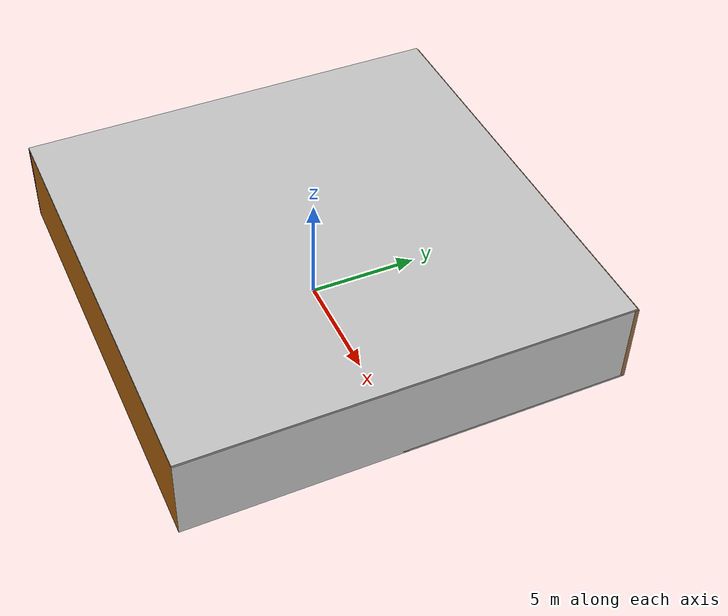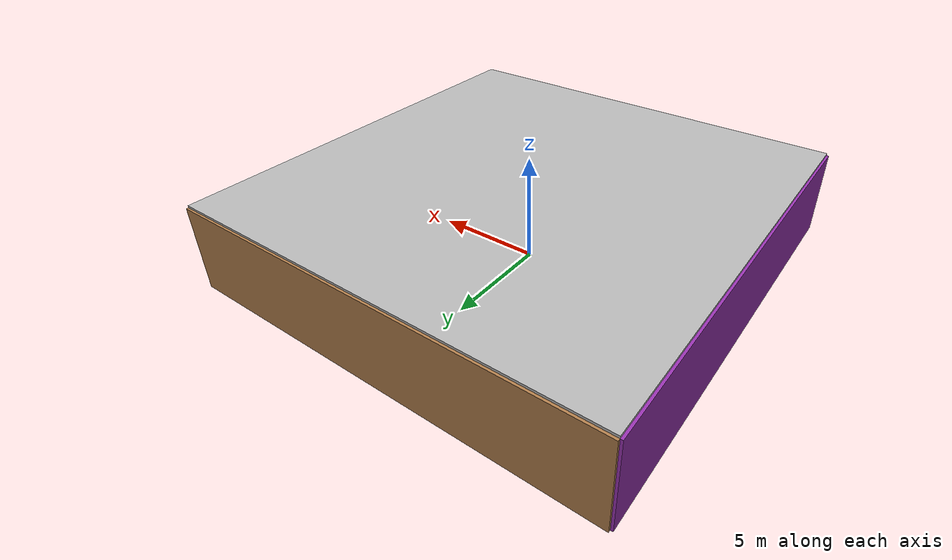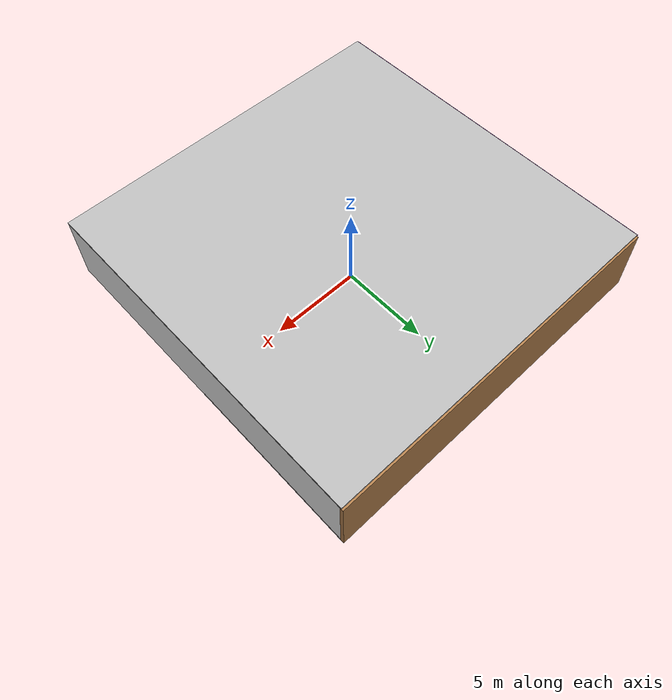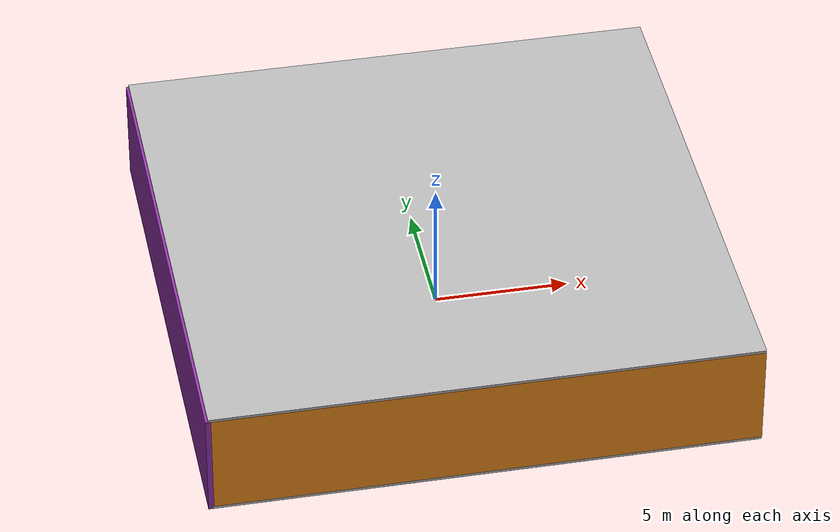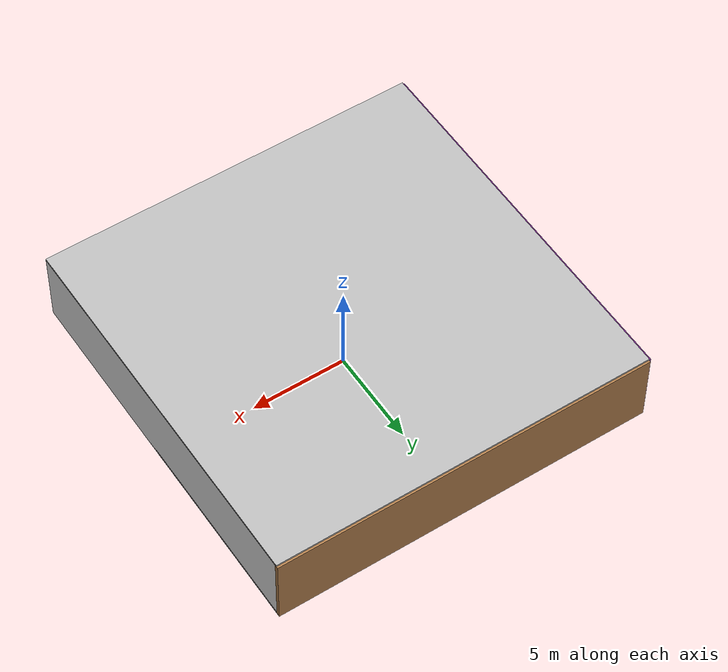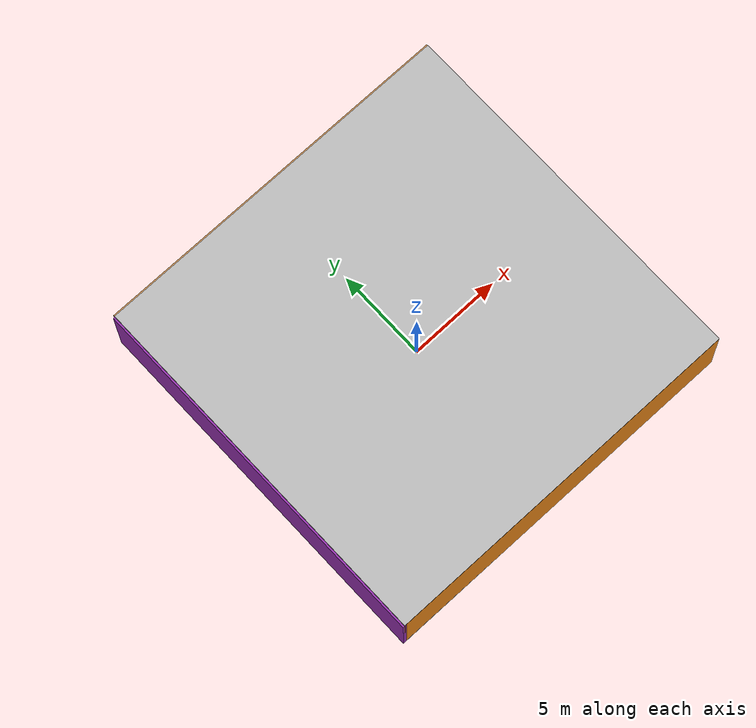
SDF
<sdf version="1.4">
 <world name="default">
  <physics type="ode">
   <max_step_size>0.001</max_step_size>
   <real_time_factor>1</real_time_factor>
   <real_time_update_rate>1000</real_time_update_rate>
   <gravity>0 0 -9.8</gravity>
  </physics>
  <scene><ambient>0.4 0.4 0.4 1</ambient><background>0.7 0.7 0.7 1</background><shadows>1</shadows></scene>
  <model name="Surrounding">
   <static>1</static>
   <link name="Ceiling">
    <collision name="Ceiling_Collision"><geometry><box><size>20 20 0.1</size></box></geometry></collision>
    <visual name="Ceiling_Visual">
     <geometry><box><size>20 20 0.1</size></box></geometry>
     <material>
      <script><uri>file://media/materials/scripts/gazebo.material</uri><name>Gazebo/Pioneer2Body</name></script>
     </material>
    </visual>
    <pose>0 0 4.05 0 0 0</pose>
   </link>
   <link name="Wall_South">
    <collision name="Wall_South_Collision">
     <geometry><box><size>20 0 4</size></box></geometry>
     <pose>0 0 2 0 -0 0</pose>
    </collision>
    <visual name="Wall_South_Visual">
     <pose>0 0 2 0 -0 0</pose>
     <geometry><box><size>20 0 4</size></box></geometry>
     <material>
      <script><uri>file://media/materials/scripts/gazebo.material</uri><name>Gazebo/Orange</name></script>
     </material>
    </visual>
    <velocity_decay><linear>0</linear><angular>0</angular></velocity_decay>
    <pose>0 -10 0 0 -0 0</pose>
   </link>
   <link name="Wall_East">
    <collision name="Wall_21_Collision">
     <geometry><box><size>20 0 4</size></box></geometry>
     <pose>0 0 2 0 -0 0</pose>
    </collision>
    <visual name="Wall_21_Visual">
     <pose>0 0 2 0 -0 0</pose>
     <geometry><box><size>20 0 4</size></box></geometry>
     <material>
      <script><uri>file://media/materials/scripts/gazebo.material</uri><name>Gazebo/White</name></script>
     </material>
    </visual>
    <velocity_decay><linear>0</linear><angular>0</angular></velocity_decay>
    <pose>10 0 0 0 -0 1.5708</pose>
   </link>
   <link name="Wall_North">
    <collision name="Wall_22_Collision">
     <geometry><box><size>20 0.2 4</size></box></geometry>
     <pose>0 0 2 0 -0 0</pose>
    </collision>
    <visual name="Wall_22_Visual">
     <pose>0 0 2 0 -0 0</pose>
     <geometry><box><size>20 0.2 4</size></box></geometry>
     <material>
      <script><uri>file://media/materials/scripts/gazebo.material</uri><name>Gazebo/WoodPallet</name></script>
     </material>
    </visual>
    <velocity_decay><linear>0</linear><angular>0</angular></velocity_decay>
    <pose>0 10 0 0 -0 0</pose>
   </link>
   <link name="Wall_West">
    <collision name="Wall_23_Collision">
     <geometry><box><size>20 0.2 4</size></box></geometry>
     <pose>0 0 2 0 -0 0</pose>
    </collision>
    <visual name="Wall_23_Visual">
     <pose>0 0 2 0 -0 0</pose>
     <geometry><box><size>20 0.2 4</size></box></geometry>
     <material>
      <script><uri>file://media/materials/scripts/gazebo.material</uri><name>Gazebo/Purple</name></script>
     </material>
    </visual>
    <velocity_decay><linear>0</linear><angular>0</angular></velocity_decay>
    <pose>-10 0 0 0 0 -1.5708</pose>
   </link>
   <link name="Ground_link">
    <collision name="collision">
     <pose>0 0 .05 0 -0 0</pose>
     <geometry><box><size>20 20 0.1</size></box></geometry>
    </collision>
    <visual name="visual">
     <pose>0 0 .05 0 -0 0</pose>
     <geometry><box><size>20 20 0.1</size></box></geometry>
     <material>
      <script><uri>file://media/materials/scripts/gazebo.material</uri><name>Gazebo/JointAnchor</name></script>
     </material>
    </visual>
   </link>
   <static>1</static>
  </model>
  <spherical_coordinates>
   <surface_model>EARTH_WGS84</surface_model>
   <latitude_deg>0</latitude_deg>
   <longitude_deg>0</longitude_deg>
   <elevation>0</elevation>
   <heading_deg>0</heading_deg>
  </spherical_coordinates>
  <light name="lightball_0" type="diffuse">
   <diffuse>0.8 0.8 0.8 1</diffuse>
   <specular>0.2 0.2 0.2 1</specular>
   <attenuation>
    <range>100</range>
    <constant>0.7</constant>
    <linear>0.01</linear>
    <quadratic>0.001</quadratic>
   </attenuation>
   <direction>-0.5 0.1 -0.9</direction>
   <pose>-8.29289750162 -0.0135826355514 3.04977354683 0 0 0</pose>
  </light>
  <light name="lightball_1" type="diffuse">
   <diffuse>0.8 0.8 0.8 1</diffuse>
   <specular>0.2 0.2 0.2 1</specular>
   <attenuation>
    <range>100</range>
    <constant>0.7</constant>
    <linear>0.01</linear>
    <quadratic>0.001</quadratic>
   </attenuation>
   <direction>-0.5 0.1 -0.9</direction>
   <pose>-1.46180301528 8.14551116497 2.0060353005 0 0 0</pose>
  </light>
  <light name="lightball_2" type="diffuse">
   <diffuse>0.8 0.8 0.8 1</diffuse>
   <specular>0.2 0.2 0.2 1</specular>
   <attenuation>
    <range>100</range>
    <constant>0.7</constant>
    <linear>0.01</linear>
    <quadratic>0.001</quadratic>
   </attenuation>
   <direction>-0.5 0.1 -0.9</direction>
   <pose>4.44081568154 -2.66159958738 1.51430945981 0 0 0</pose>
  </light>
  <light name="lightball_3" type="diffuse">
   <diffuse>0.8 0.8 0.8 1</diffuse>
   <specular>0.2 0.2 0.2 1</specular>
   <attenuation>
    <range>100</range>
    <constant>0.7</constant>
    <linear>0.01</linear>
    <quadratic>0.001</quadratic>
   </attenuation>
   <direction>-0.5 0.1 -0.9</direction>
   <pose>9.82026555967 -5.43306454626 2.97896339233 0 0 0</pose>
  </light>
  <light name="lightball_4" type="diffuse">
   <diffuse>0.8 0.8 0.8 1</diffuse>
   <specular>0.2 0.2 0.2 1</specular>
   <attenuation>
    <range>100</range>
    <constant>0.7</constant>
    <linear>0.01</linear>
    <quadratic>0.001</quadratic>
   </attenuation>
   <direction>-0.5 0.1 -0.9</direction>
   <pose>4.59222996264 6.14416833036 0.948829081065 0 0 0</pose>
  </light>
  <light name="lightball_5" type="diffuse">
   <diffuse>0.8 0.8 0.8 1</diffuse>
   <specular>0.2 0.2 0.2 1</specular>
   <attenuation>
    <range>100</range>
    <constant>0.7</constant>
    <linear>0.01</linear>
    <quadratic>0.001</quadratic>
   </attenuation>
   <direction>-0.5 0.1 -0.9</direction>
   <pose>-6.28032423657 5.92757679268 2.99122765019 0 0 0</pose>
  </light>
  <light name="lightball_6" type="diffuse">
   <diffuse>0.8 0.8 0.8 1</diffuse>
   <specular>0.2 0.2 0.2 1</specular>
   <attenuation>
    <range>100</range>
    <constant>0.7</constant>
    <linear>0.01</linear>
    <quadratic>0.001</quadratic>
   </attenuation>
   <direction>-0.5 0.1 -0.9</direction>
   <pose>9.72610484473 -1.93433721665 0.560915891889 0 0 0</pose>
  </light>
  <include><uri>model://cabinet</uri><pose>-8.21288156738 -6.85655990185 0 0 0 2.91660630293</pose></include>
  <include>
   <uri>model://robocup_3Dsim_goal</uri>
   <pose>-7.04726205628 3.91791248469 0 0 0 1.8962582849</pose>
  </include>
  <include><uri>model://table</uri><pose>-4.80812139519 -6.87614591641 0 0 0 2.32214508462</pose></include>
  <include>
   <uri>model://robocup_3Dsim_goal</uri>
   <pose>-4.31073094527 -4.00118243794 0 0 0 2.49184737348</pose>
  </include>
  <include><uri>model://table</uri><pose>-2.28229046012 -3.87139854483 0 0 0 0.929582030108</pose></include>
  <include>
   <uri>model://robocup_3Dsim_goal</uri>
   <pose>5.4271594382 3.79783365761 0 0 0 3.10074156106</pose>
  </include>
  <include><uri>model://cabinet</uri><pose>6.3394444916 -3.88860916522 0 0 0 0.766269985102</pose></include>
  <include>
   <uri>model://construction_cone</uri>
   <pose>8.56473073741 -2.21975094453 0 0 0 0.146333830171</pose>
  </include>
  <include>
   <uri>model://construction_cone</uri>
   <pose>7.51805772719 7.05818661423 0 0 0 1.79147882264</pose>
  </include>
 </world>
</sdf>

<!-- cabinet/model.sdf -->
<sdf version="1.5">
  <model name="cabinet">
    <static>true</static>
    <link name="cabinet_bottom_plate">
      <inertial>
        <pose>0 0 -1 0 0 0</pose>
        <inertia>
          <ixx>2.050000</ixx>
          <ixy>0</ixy>
          <ixz>0</ixz>
          <iyy>2.050000</iyy>
          <iyz>0</iyz>
          <izz>2.050000</izz>
        </inertia>
        <mass>25.000000</mass>
      </inertial>
      <collision name="cabinet_bottom_plate_geom">
        <pose>0 0 0.010000 0 0 0</pose>
        <geometry>
          <box>
            <size>0.450000 0.450000 0.020000</size>
          </box>
        </geometry>
      </collision>
      <visual name="cabinet_bottom_plate_geom_visual">
        <pose>0 0 0.010000 0 0 0</pose>
        <geometry>
          <box>
            <size>0.450000 0.450000 0.020000</size>
          </box>
        </geometry>
        <material>
          <script>
            <uri>model://media/materials/scripts/gazebo.material</uri>
            <name>Gazebo/Wood</name>
          </script>
        </material>
      </visual>
      <collision name="cabinet_bottom_plate_geom_cabinet_back_plate">
        <pose>0.235000 0 0.510000 0 0 0</pose>
        <geometry>
          <box>
            <size>0.020000 0.450000 1.020000</size>
          </box>
        </geometry>
      </collision>
      <visual name="cabinet_bottom_plate_geom_cabinet_back_plate_visual">
        <pose>0.235000 0 0.510000 0 0 0</pose>
        <geometry>
          <box>
            <size>0.020000 0.450000 1.020000</size>
          </box>
        </geometry>
        <material>
          <script>
            <uri>model://media/materials/scripts/gazebo.material</uri>
            <name>Gazebo/Wood</name>
          </script>
        </material>
      </visual>
      <collision name="cabinet_bottom_plate_geom_cabinet_left_plate">
        <pose>0 0.235000 0.510000 0 0 0</pose>
        <geometry>
          <box>
            <size>0.450000 0.020000 1.020000</size>
          </box>
        </geometry>
      </collision>
      <visual name="cabinet_bottom_plate_geom_cabinet_left_plate_visual">
        <pose>0 0.235000 0.510000 0 0 0</pose>
        <geometry>
          <box>
            <size>0.450000 0.020000 1.020000</size>
          </box>
        </geometry>
        <material>
          <script>
            <uri>model://media/materials/scripts/gazebo.material</uri>
            <name>Gazebo/Wood</name>
          </script>
        </material>
      </visual>
      <collision name="cabinet_bottom_plate_geom_cabinet_middle_plate">
        <pose>0 0 0.510000 0 0 0</pose>
        <geometry>
          <box>
            <size>0.450000 0.450000 0.020000</size>
          </box>
        </geometry>
      </collision>
      <visual name="cabinet_bottom_plate_geom_cabinet_middle_plate_visual">
        <pose>0 0 0.510000 0 0 0</pose>
        <geometry>
          <box>
            <size>0.450000 0.450000 0.020000</size>
          </box>
        </geometry>
        <material>
          <script>
            <uri>model://media/materials/scripts/gazebo.material</uri>
            <name>Gazebo/Wood</name>
          </script>
        </material>
      </visual>
      <collision name="cabinet_bottom_plate_geom_cabinet_right_plate">
        <pose>0 -0.235000 0.510000 0 0 0</pose>
        <geometry>
          <box>
            <size>0.450000 0.020000 1.020000</size>
          </box>
        </geometry>
      </collision>
      <visual name="cabinet_bottom_plate_geom_cabinet_right_plate_visual">
        <pose>0 -0.235000 0.510000 0 0 0</pose>
        <geometry>
          <box>
            <size>0.450000 0.020000 1.020000</size>
          </box>
        </geometry>
        <material>
          <script>
            <uri>model://media/materials/scripts/gazebo.material</uri>
            <name>Gazebo/Wood</name>
          </script>
        </material>
      </visual>
      <collision name="cabinet_bottom_plate_geom_cabinet_top_plate">
        <pose>0 0 1.010000 0 0 0</pose>
        <geometry>
          <box>
            <size>0.450000 0.450000 0.020000</size>
          </box>
        </geometry>
      </collision>
      <visual name="cabinet_bottom_plate_geom_cabinet_top_plate_visual">
        <pose>0 0 1.010000 0 0 0</pose>
        <geometry>
          <box>
            <size>0.450000 0.450000 0.020000</size>
          </box>
        </geometry>
        <material>
          <script>
            <uri>model://media/materials/scripts/gazebo.material</uri>
            <name>Gazebo/Wood</name>
          </script>
        </material>
      </visual>
    </link>
  </model>
</sdf>

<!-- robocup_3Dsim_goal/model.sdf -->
<sdf version="1.5">
  <model name="robocup_3d_goal">
    <static>true</static>
    <link name="left_post">
      <pose>0 1.05 0.45 0 0 0</pose>
      <collision name="collision">
        <geometry>
          <cylinder>
            <radius>0.05</radius>
            <length>0.9</length>
          </cylinder>
        </geometry>
      </collision>
      <visual name="visual">
        <geometry>
          <cylinder>
            <radius>0.05</radius>
            <length>0.9</length>
          </cylinder>
        </geometry>
        <material>
          <script>
            <uri>file://media/materials/scripts/gazebo.material</uri>
            <name>Gazebo/ZincYellow</name>
          </script>
        </material>
      </visual>
    </link>
    <link name="left_support_horiz_lower">
      <pose>0.30 1.05 0.01 0 0 0</pose>
      <collision name="collision">
        <geometry>
          <box>
            <size>0.50 0.02 0.02</size>
          </box>
        </geometry>
      </collision>
      <visual name="visual">
        <geometry>
          <box>
            <size>0.50 0.02 0.02</size>
          </box>
        </geometry>
        <material>
          <script>
            <uri>file://media/materials/scripts/gazebo.material</uri>
            <name>Gazebo/White</name>
          </script>
        </material>
      </visual>
    </link>
    <link name="left_support_horiz_upper">
      <pose>0.30 1.05 0.79 0 0 0</pose>
      <collision name="collision">
        <geometry>
          <box>
            <size>0.50 0.02 0.02</size>
          </box>
        </geometry>
      </collision>
      <visual name="visual">
        <geometry>
          <box>
            <size>0.50 0.02 0.02</size>
          </box>
        </geometry>
        <material>
          <script>
            <uri>file://media/materials/scripts/gazebo.material</uri>
            <name>Gazebo/White</name>
          </script>
        </material>
      </visual>
    </link>
    <link name="left_support_vertical">
      <pose>0.56 1.05 0.4 0 1.5708 0</pose>
      <collision name="collision">
        <geometry>
          <box>
            <size>0.80 0.02 0.02</size>
          </box>
        </geometry>
      </collision>
      <visual name="visual">
        <geometry>
          <box>
            <size>0.80 0.02 0.02</size>
          </box>
        </geometry>
        <material>
          <script>
            <uri>file://media/materials/scripts/gazebo.material</uri>
            <name>Gazebo/White</name>
          </script>
        </material>
      </visual>
    </link>
    <link name="right_support_horiz_lower">
      <pose>0.30 -1.05 0.01 0 0 0</pose>
      <collision name="collision">
        <geometry>
          <box>
            <size>0.50 0.02 0.02</size>
          </box>
        </geometry>
      </collision>
      <visual name="visual">
        <geometry>
          <box>
            <size>0.50 0.02 0.02</size>
          </box>
        </geometry>
        <material>
          <script>
            <uri>file://media/materials/scripts/gazebo.material</uri>
            <name>Gazebo/White</name>
          </script>
        </material>
      </visual>
    </link>
    <link name="right_support_horiz_upper">
      <pose>0.30 -1.05 0.79 0 0 0</pose>
      <collision name="collision">
        <geometry>
          <box>
            <size>0.50 0.02 0.02</size>
          </box>
        </geometry>
      </collision>
      <visual name="visual">
        <geometry>
          <box>
            <size>0.50 0.02 0.02</size>
          </box>
        </geometry>
        <material>
          <script>
            <uri>file://media/materials/scripts/gazebo.material</uri>
            <name>Gazebo/White</name>
          </script>
        </material>
      </visual>
    </link>
    <link name="right_support_vertical">
      <pose>0.56 -1.05 0.4 0 1.5708 0</pose>
      <collision name="collision">
        <geometry>
          <box>
            <size>0.80 0.02 0.02</size>
          </box>
        </geometry>
      </collision>
      <visual name="visual">
        <geometry>
          <box>
            <size>0.80 0.02 0.02</size>
          </box>
        </geometry>
        <material>
          <script>
            <uri>file://media/materials/scripts/gazebo.material</uri>
            <name>Gazebo/White</name>
          </script>
        </material>
      </visual>
    </link>
    <link name="center_support_horiz_lower">
      <pose>0.56 0 0.01 0 1.5708 0</pose>
      <collision name="collision">
        <geometry>
          <box>
            <size>0.02 2.08 0.02</size>
          </box>
        </geometry>
      </collision>
      <visual name="visual">
        <geometry>
          <box>
            <size>0.02 2.08 0.02</size>
          </box>
        </geometry>
        <material>
          <script>
            <uri>file://media/materials/scripts/gazebo.material</uri>
            <name>Gazebo/White</name>
          </script>
        </material>
      </visual>
    </link>
    <link name="center_support_horiz_upper">
      <pose>0.56 0 0.79 0 1.5708 0</pose>
      <collision name="collision">
        <geometry>
          <box>
            <size>0.02 2.08 0.02</size>
          </box>
        </geometry>
      </collision>
      <visual name="visual">
        <geometry>
          <box>
            <size>0.02 2.08 0.02</size>
          </box>
        </geometry>
        <material>
          <script>
            <uri>file://media/materials/scripts/gazebo.material</uri>
            <name>Gazebo/White</name>
          </script>
        </material>
      </visual>
    </link>
    <link name="right_post">
      <pose>0 -1.05 0.45 0 0 0</pose>
      <collision name="collision">
        <geometry>
          <cylinder>
            <radius>0.05</radius>
            <length>0.9</length>
          </cylinder>
        </geometry>
      </collision>
      <visual name="visual">
        <geometry>
          <cylinder>
            <radius>0.05</radius>
            <length>0.9</length>
          </cylinder>
        </geometry>
        <material>
          <script>
            <uri>file://media/materials/scripts/gazebo.material</uri>
            <name>Gazebo/ZincYellow</name>
          </script>
        </material>
      </visual>
    </link>
    <link name="crossbar">
      <pose>0 0 0.85 1.57 1.57 0</pose>
      <collision name="collision">
        <geometry>
          <cylinder>
            <radius>0.05</radius>
            <length>2.0</length>
          </cylinder>
        </geometry>
      </collision>
      <visual name="visual">
        <geometry>
          <cylinder>
            <radius>0.05</radius>
            <length>2.0</length>
          </cylinder>
        </geometry>
        <material>
          <script>
            <uri>file://media/materials/scripts/gazebo.material</uri>
            <name>Gazebo/ZincYellow</name>
          </script>
        </material>
      </visual>
    </link>
    <link name="center_net">
      <pose>0.56 0 0.40 0 0 0</pose>
      <collision name="collision">
        <geometry>
          <box>
            <size>0.01 2.1 0.80</size>
          </box>
        </geometry>
      </collision>
      <visual name="visual">
        <geometry>
          <box>
            <size>0.01 2.1 0.80</size>
          </box>
        </geometry>
        <material>
          <script>
            <uri>model://../model_source/models/robocup09_spl_field/materials/scripts/</uri>
            <uri>model://../model_source/models/robocup09_spl_field/materials/textures/</uri>
            <name>RoboCup/Net</name>
          </script>
        </material>
      </visual>
    </link>
    <link name="left_net">
      <pose>0.30 1.05 0.40 0 0 0</pose>
      <collision name="collision">
        <geometry>
          <box>
            <size>0.50 0.01 0.76</size>
          </box>
        </geometry>
      </collision>
      <visual name="visual">
        <geometry>
          <box>
            <size>0.50 0.01 0.76</size>
          </box>
        </geometry>
        <material>
          <script>
            <uri>model://../model_source/models/robocup09_spl_field/materials/scripts/</uri>
            <uri>model://../model_source/models/robocup09_spl_field/materials/textures/</uri>
            <name>RoboCup/Net</name>
          </script>
        </material>
      </visual>
    </link>
    <link name="right_net">
      <pose>0.30 -1.05 0.40 0 0 0</pose>
      <collision name="collision">
        <geometry>
          <box>
            <size>0.50 0.01 0.76</size>
          </box>
        </geometry>
      </collision>
      <visual name="visual">
        <geometry>
          <box>
            <size>0.50 0.01 0.76</size>
          </box>
        </geometry>
        <material>
          <script>
            <uri>model://../model_source/models/robocup09_spl_field/materials/scripts/</uri>
            <uri>model://../model_source/models/robocup09_spl_field/materials/textures/</uri>
            <name>RoboCup/Net</name>
          </script>
        </material>
      </visual>
    </link>
  </model>
</sdf>

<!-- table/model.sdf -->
<sdf version="1.5">
  <model name="table">
    <static>true</static>
    <link name="link">
      <collision name="surface">
        <pose>0 0 1.0 0 0 0</pose>
        <geometry>
          <box>
            <size>1.5 0.8 0.03</size>
          </box>
        </geometry>
        <surface>
          <friction>
            <ode>
              <mu>0.6</mu>
              <mu2>0.6</mu2>
            </ode>
          </friction>
        </surface>
      </collision>
      <visual name="visual1">
        <pose>0 0 1.0 0 0 0</pose>
        <geometry>
          <box>
            <size>1.5 0.8 0.03</size>
          </box>
        </geometry>
        <material>
          <script>
            <uri>model://media/materials/scripts/gazebo.material</uri>
            <name>Gazebo/Wood</name>
          </script>
        </material>
      </visual>
      <collision name="front_left_leg">
        <pose>0.68 0.38 0.5 0 0 0</pose>
        <geometry>
          <cylinder>
            <radius>0.02</radius>
            <length>1.0</length>
          </cylinder>
        </geometry>
      </collision>
      <visual name="front_left_leg">
        <pose>0.68 0.38 0.5 0 0 0</pose>
        <geometry>
          <cylinder>
            <radius>0.02</radius>
            <length>1.0</length>
          </cylinder>
        </geometry>
        <material>
          <script>
            <uri>model://media/materials/scripts/gazebo.material</uri>
            <name>Gazebo/Grey</name>
          </script>
        </material>
      </visual>
      <collision name="front_right_leg">
        <pose>0.68 -0.38 0.5 0 0 0</pose>
        <geometry>
          <cylinder>
            <radius>0.02</radius>
            <length>1.0</length>
          </cylinder>
        </geometry>
      </collision>
      <visual name="front_right_leg">
        <pose>0.68 -0.38 0.5 0 0 0</pose>
        <geometry>
          <cylinder>
            <radius>0.02</radius>
            <length>1.0</length>
          </cylinder>
        </geometry>
        <material>
          <script>
            <uri>model://media/materials/scripts/gazebo.material</uri>
            <name>Gazebo/Grey</name>
          </script>
        </material>
      </visual>
      <collision name="back_right_leg">
        <pose>-0.68 -0.38 0.5 0 0 0</pose>
        <geometry>
          <cylinder>
            <radius>0.02</radius>
            <length>1.0</length>
          </cylinder>
        </geometry>
      </collision>
      <visual name="back_right_leg">
        <pose>-0.68 -0.38 0.5 0 0 0</pose>
        <geometry>
          <cylinder>
            <radius>0.02</radius>
            <length>1.0</length>
          </cylinder>
        </geometry>
        <material>
          <script>
            <uri>model://media/materials/scripts/gazebo.material</uri>
            <name>Gazebo/Grey</name>
          </script>
        </material>
      </visual>
      <collision name="back_left_leg">
        <pose>-0.68 0.38 0.5 0 0 0</pose>
        <geometry>
          <cylinder>
            <radius>0.02</radius>
            <length>1.0</length>
          </cylinder>
        </geometry>
      </collision>
      <visual name="back_left_leg">
        <pose>-0.68 0.38 0.5 0 0 0</pose>
        <geometry>
          <cylinder>
            <radius>0.02</radius>
            <length>1.0</length>
          </cylinder>
        </geometry>
        <material>
          <script>
            <uri>model://media/materials/scripts/gazebo.material</uri>
            <name>Gazebo/Grey</name>
          </script>
        </material>
      </visual>
    </link>
  </model>
</sdf>

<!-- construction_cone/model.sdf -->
<sdf version="1.5">
  <model name="Construction Cone">
    <link name="link">
      <collision name="collision">
        <geometry>
          <mesh>
            <scale>10 10 10</scale>
            <uri>file://isr-testbed/construction_cone/meshes/construction_cone.dae</uri>
          </mesh>
        </geometry>
      </collision>
      <visual name="visual">
        <geometry>
          <mesh>
            <scale>10 10 10</scale>
            <uri>file://isr-testbed/construction_cone/meshes/construction_cone.dae</uri>
          </mesh>
        </geometry>
      </visual>
    </link>
  </model>
</sdf>
